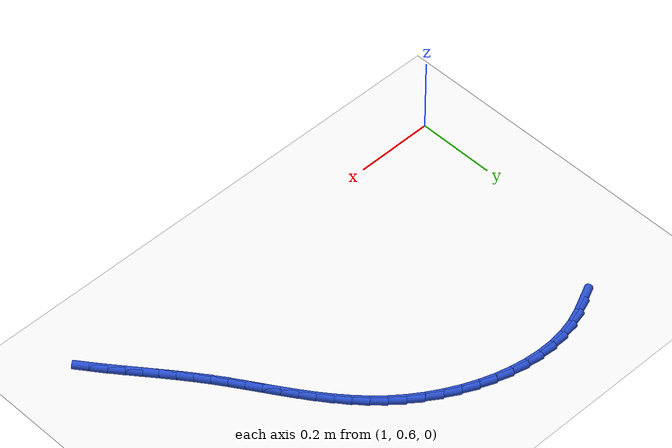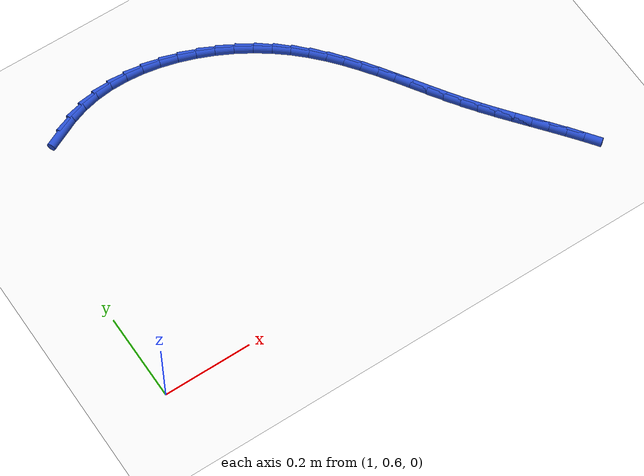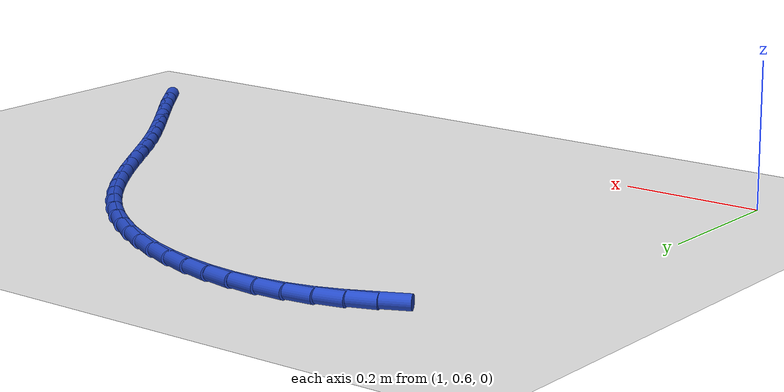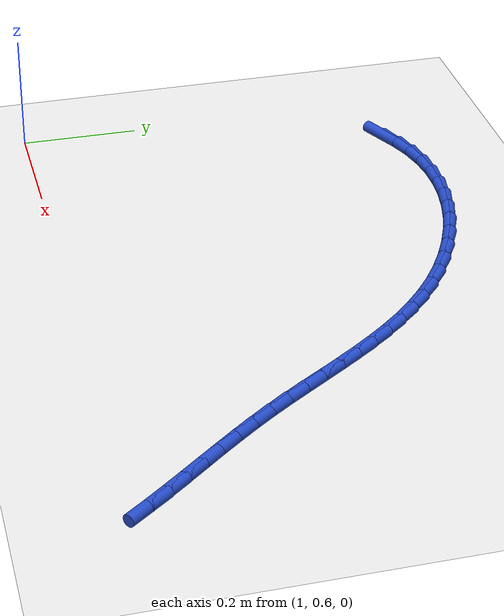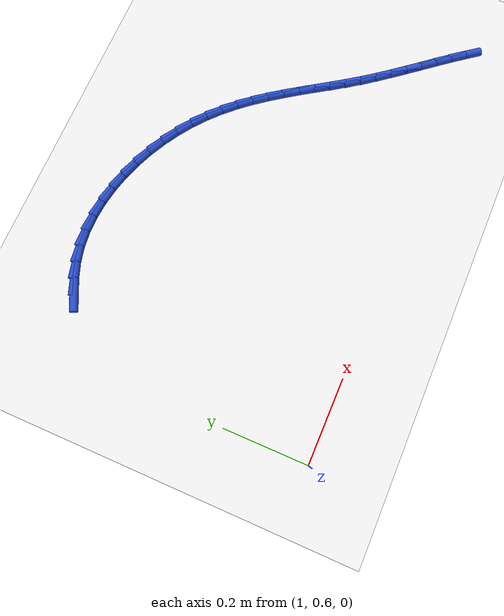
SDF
<sdf version="1.6">
 <world name="default">
  <model name="ground_plane">
   <static>1</static>
   <link name="link">
    <collision name="collision">
     <geometry><plane><normal>0 0 1</normal><size>100 100</size></plane></geometry>
     <surface><friction><ode><mu>100</mu><mu2>50</mu2></ode></friction></surface>
    </collision>
    <visual name="visual">
     <cast_shadows>0</cast_shadows>
     <geometry><plane><normal>0 0 1</normal><size>100 100</size></plane></geometry>
     <material>
      <script><uri>file://media/materials/scripts/gazebo.material</uri><name>Gazebo/WhiteGlow</name></script>
     </material>
    </visual>
   </link>
  </model>
  <model name="line">
   <link name="link_46">
    <pose>1.1372575468178663 1.2276370882994905 0.01 0 1.57 0.4421913343777353</pose>
    <collision name="collision">
     <geometry><cylinder><radius>0.01</radius><length>0.08</length></cylinder></geometry>
    </collision>
    <visual name="visual">
     <material>
      <script><name>Gazebo/Blue</name><uri>file://media/materials/scripts/gazebo.material</uri></script>
     </material>
     <geometry><cylinder><radius>0.01</radius><length>0.08</length></cylinder></geometry>
    </visual>
   </link>
   <link name="link_47">
    <pose>1.1714959165855325 1.243847597305266 0.01 0 1.57 0.3497722982154622</pose>
    <collision name="collision">
     <geometry><cylinder><radius>0.01</radius><length>0.08</length></cylinder></geometry>
    </collision>
    <visual name="visual">
     <material>
      <script><name>Gazebo/Blue</name><uri>file://media/materials/scripts/gazebo.material</uri></script>
     </material>
     <geometry><cylinder><radius>0.01</radius><length>0.08</length></cylinder></geometry>
    </visual>
   </link>
   <link name="link_48">
    <pose>1.2067796218252715 1.2567180511964138 0.01 0 1.57 0.23067535957727045</pose>
    <collision name="collision">
     <geometry><cylinder><radius>0.01</radius><length>0.08</length></cylinder></geometry>
    </collision>
    <visual name="visual">
     <material>
      <script><name>Gazebo/Blue</name><uri>file://media/materials/scripts/gazebo.material</uri></script>
     </material>
     <geometry><cylinder><radius>0.01</radius><length>0.08</length></cylinder></geometry>
    </visual>
   </link>
   <link name="link_49">
    <pose>1.2434469630554865 1.2653295911556897 0.01 0 1.57 0.11525048066100527</pose>
    <collision name="collision">
     <geometry><cylinder><radius>0.01</radius><length>0.08</length></cylinder></geometry>
    </collision>
    <visual name="visual">
     <material>
      <script><name>Gazebo/Blue</name><uri>file://media/materials/scripts/gazebo.material</uri></script>
     </material>
     <geometry><cylinder><radius>0.01</radius><length>0.08</length></cylinder></geometry>
    </visual>
   </link>
   <link name="link_50">
    <pose>1.2812796236305266 1.269709231776286 0.01 0 1.57 0.009816476666900477</pose>
    <collision name="collision">
     <geometry><cylinder><radius>0.01</radius><length>0.08</length></cylinder></geometry>
    </collision>
    <visual name="visual">
     <material>
      <script><name>Gazebo/Blue</name><uri>file://media/materials/scripts/gazebo.material</uri></script>
     </material>
     <geometry><cylinder><radius>0.01</radius><length>0.08</length></cylinder></geometry>
    </visual>
   </link>
   <link name="link_51">
    <pose>1.3199387960097917 1.2700887408302244 0.01 0 1.57 -0.08635241356312243</pose>
    <collision name="collision">
     <geometry><cylinder><radius>0.01</radius><length>0.08</length></cylinder></geometry>
    </collision>
    <visual name="visual">
     <material>
      <script><name>Gazebo/Blue</name><uri>file://media/materials/scripts/gazebo.material</uri></script>
     </material>
     <geometry><cylinder><radius>0.01</radius><length>0.08</length></cylinder></geometry>
    </visual>
   </link>
   <link name="link_52">
    <pose>1.3590856726526825 1.2666998860895282 0.01 0 1.57 -0.17444766923385047</pose>
    <collision name="collision">
     <geometry><cylinder><radius>0.01</radius><length>0.08</length></cylinder></geometry>
    </collision>
    <visual name="visual">
     <material>
      <script><name>Gazebo/Blue</name><uri>file://media/materials/scripts/gazebo.material</uri></script>
     </material>
     <geometry><cylinder><radius>0.01</radius><length>0.08</length></cylinder></geometry>
    </visual>
   </link>
   <link name="link_53">
    <pose>1.3983814460185984 1.259774435326218 0.01 0 1.57 -0.2558705989483674</pose>
    <collision name="collision">
     <geometry><cylinder><radius>0.01</radius><length>0.08</length></cylinder></geometry>
    </collision>
    <visual name="visual">
     <material>
      <script><name>Gazebo/Blue</name><uri>file://media/materials/scripts/gazebo.material</uri></script>
     </material>
     <geometry><cylinder><radius>0.01</radius><length>0.08</length></cylinder></geometry>
    </visual>
   </link>
   <link name="link_54">
    <pose>1.437487308566941 1.2495441563123164 0.01 0 1.57 -0.3320797615012355</pose>
    <collision name="collision">
     <geometry><cylinder><radius>0.01</radius><length>0.08</length></cylinder></geometry>
    </collision>
    <visual name="visual">
     <material>
      <script><name>Gazebo/Blue</name><uri>file://media/materials/scripts/gazebo.material</uri></script>
     </material>
     <geometry><cylinder><radius>0.01</radius><length>0.08</length></cylinder></geometry>
    </visual>
   </link>
   <link name="link_55">
    <pose>1.4760644527571107 1.236240816819846 0.01 0 1.57 -0.4045190941619599</pose>
    <collision name="collision">
     <geometry><cylinder><radius>0.01</radius><length>0.08</length></cylinder></geometry>
    </collision>
    <visual name="visual">
     <material>
      <script><name>Gazebo/Blue</name><uri>file://media/materials/scripts/gazebo.material</uri></script>
     </material>
     <geometry><cylinder><radius>0.01</radius><length>0.08</length></cylinder></geometry>
    </visual>
   </link>
   <link name="link_56">
    <pose>1.5137740710485073 1.2200961846208285 0.01 0 1.57 -0.47459988961286836</pose>
    <collision name="collision">
     <geometry><cylinder><radius>0.01</radius><length>0.08</length></cylinder></geometry>
    </collision>
    <visual name="visual">
     <material>
      <script><name>Gazebo/Blue</name><uri>file://media/materials/scripts/gazebo.material</uri></script>
     </material>
     <geometry><cylinder><radius>0.01</radius><length>0.08</length></cylinder></geometry>
    </visual>
   </link>
   <link name="link_57">
    <pose>1.5502773559005314 1.2013420274872861 0.01 0 1.57 -0.5437158128022382</pose>
    <collision name="collision">
     <geometry><cylinder><radius>0.01</radius><length>0.08</length></cylinder></geometry>
    </collision>
    <visual name="visual">
     <material>
      <script><name>Gazebo/Blue</name><uri>file://media/materials/scripts/gazebo.material</uri></script>
     </material>
     <geometry><cylinder><radius>0.01</radius><length>0.08</length></cylinder></geometry>
    </visual>
   </link>
   <link name="link_58">
    <pose>1.5852354997725835 1.1802101131912401 0.01 0 1.57 -0.6132775121483026</pose>
    <collision name="collision">
     <geometry><cylinder><radius>0.01</radius><length>0.08</length></cylinder></geometry>
    </collision>
    <visual name="visual">
     <material>
      <script><name>Gazebo/Blue</name><uri>file://media/materials/scripts/gazebo.material</uri></script>
     </material>
     <geometry><cylinder><radius>0.01</radius><length>0.08</length></cylinder></geometry>
    </visual>
   </link>
   <link name="link_59">
    <pose>1.6183096951240639 1.1569322095047145 0.01 0 1.57 -0.6847044109048276</pose>
    <collision name="collision">
     <geometry><cylinder><radius>0.01</radius><length>0.08</length></cylinder></geometry>
    </collision>
    <visual name="visual">
     <material>
      <script><name>Gazebo/Blue</name><uri>file://media/materials/scripts/gazebo.material</uri></script>
     </material>
     <geometry><cylinder><radius>0.01</radius><length>0.08</length></cylinder></geometry>
    </visual>
   </link>
   <link name="link_60">
    <pose>1.6491645330427906 1.1317401005094236 0.01 0 1.57 -0.7554290626280827</pose>
    <collision name="collision">
     <geometry><cylinder><radius>0.01</radius><length>0.08</length></cylinder></geometry>
    </collision>
    <visual name="visual">
     <material>
      <script><name>Gazebo/Blue</name><uri>file://media/materials/scripts/gazebo.material</uri></script>
     </material>
     <geometry><cylinder><radius>0.01</radius><length>0.08</length></cylinder></geometry>
    </visual>
   </link>
   <link name="link_61">
    <pose>1.6776989588125966 1.1048666949305959 0.01 0 1.57 -0.8186812039620099</pose>
    <collision name="collision">
     <geometry><cylinder><radius>0.01</radius><length>0.08</length></cylinder></geometry>
    </collision>
    <visual name="visual">
     <material>
      <script><name>Gazebo/Blue</name><uri>file://media/materials/scripts/gazebo.material</uri></script>
     </material>
     <geometry><cylinder><radius>0.01</radius><length>0.08</length></cylinder></geometry>
    </visual>
   </link>
   <link name="link_62">
    <pose>1.7041938408388853 1.0765467343062143 0.01 0 1.57 -0.8728358423089139</pose>
    <collision name="collision">
     <geometry><cylinder><radius>0.01</radius><length>0.08</length></cylinder></geometry>
    </collision>
    <visual name="visual">
     <material>
      <script><name>Gazebo/Blue</name><uri>file://media/materials/scripts/gazebo.material</uri></script>
     </material>
     <geometry><cylinder><radius>0.01</radius><length>0.08</length></cylinder></geometry>
    </visual>
   </link>
   <link name="link_63">
    <pose>1.7289651850000305 1.047015128795655 0.01 0 1.57 -0.9172488155020763</pose>
    <collision name="collision">
     <geometry><cylinder><radius>0.01</radius><length>0.08</length></cylinder></geometry>
    </collision>
    <visual name="visual">
     <material>
      <script><name>Gazebo/Blue</name><uri>file://media/materials/scripts/gazebo.material</uri></script>
     </material>
     <geometry><cylinder><radius>0.01</radius><length>0.08</length></cylinder></geometry>
    </visual>
   </link>
   <link name="link_64">
    <pose>1.7523289971744072 1.0165067885582937 0.01 0 1.57 -0.9515913978916665</pose>
    <collision name="collision">
     <geometry><cylinder><radius>0.01</radius><length>0.08</length></cylinder></geometry>
    </collision>
    <visual name="visual">
     <material>
      <script><name>Gazebo/Blue</name><uri>file://media/materials/scripts/gazebo.material</uri></script>
     </material>
     <geometry><cylinder><radius>0.01</radius><length>0.08</length></cylinder></geometry>
    </visual>
   </link>
   <link name="link_65">
    <pose>1.7746012832403901 0.985256623753507 0.01 0 1.57 -0.975733914231562</pose>
    <collision name="collision">
     <geometry><cylinder><radius>0.01</radius><length>0.08</length></cylinder></geometry>
    </collision>
    <visual name="visual">
     <material>
      <script><name>Gazebo/Blue</name><uri>file://media/materials/scripts/gazebo.material</uri></script>
     </material>
     <geometry><cylinder><radius>0.01</radius><length>0.08</length></cylinder></geometry>
    </visual>
   </link>
   <link name="link_66">
    <pose>1.7960980490763516 0.953499544540671 0.01 0 1.57 -0.9896436483872656</pose>
    <collision name="collision">
     <geometry><cylinder><radius>0.01</radius><length>0.08</length></cylinder></geometry>
    </collision>
    <visual name="visual">
     <material>
      <script><name>Gazebo/Blue</name><uri>file://media/materials/scripts/gazebo.material</uri></script>
     </material>
     <geometry><cylinder><radius>0.01</radius><length>0.08</length></cylinder></geometry>
    </visual>
   </link>
   <link name="link_67">
    <pose>1.8171353005606667 0.9214704610791613 0.01 0 1.57 -0.9933098073378793</pose>
    <collision name="collision">
     <geometry><cylinder><radius>0.01</radius><length>0.08</length></cylinder></geometry>
    </collision>
    <visual name="visual">
     <material>
      <script><name>Gazebo/Blue</name><uri>file://media/materials/scripts/gazebo.material</uri></script>
     </material>
     <geometry><cylinder><radius>0.01</radius><length>0.08</length></cylinder></geometry>
    </visual>
   </link>
   <link name="link_68">
    <pose>1.83802904357171 0.8894042835283544 0.01 0 1.57 -0.9866996945480181</pose>
    <collision name="collision">
     <geometry><cylinder><radius>0.01</radius><length>0.08</length></cylinder></geometry>
    </collision>
    <visual name="visual">
     <material>
      <script><name>Gazebo/Blue</name><uri>file://media/materials/scripts/gazebo.material</uri></script>
     </material>
     <geometry><cylinder><radius>0.01</radius><length>0.08</length></cylinder></geometry>
    </visual>
   </link>
   <link name="link_69">
    <pose>1.8590952839878554 0.8575359220476265 0.01 0 1.57 -0.969746816540052</pose>
    <collision name="collision">
     <geometry><cylinder><radius>0.01</radius><length>0.08</length></cylinder></geometry>
    </collision>
    <visual name="visual">
     <material>
      <script><name>Gazebo/Blue</name><uri>file://media/materials/scripts/gazebo.material</uri></script>
     </material>
     <geometry><cylinder><radius>0.01</radius><length>0.08</length></cylinder></geometry>
    </visual>
   </link>
   <link name="link_70">
    <pose>1.8806500276874765 0.8261002867963538 0.01 0 1.57 -0.9442683324021134</pose>
    <collision name="collision">
     <geometry><cylinder><radius>0.01</radius><length>0.08</length></cylinder></geometry>
    </collision>
    <visual name="visual">
     <material>
      <script><name>Gazebo/Blue</name><uri>file://media/materials/scripts/gazebo.material</uri></script>
     </material>
     <geometry><cylinder><radius>0.01</radius><length>0.08</length></cylinder></geometry>
    </visual>
   </link>
   <link name="link_71">
    <pose>1.9029536798570315 0.795286067098332 0.01 0 1.57 -0.9215701571300232</pose>
    <collision name="collision">
     <geometry><cylinder><radius>0.01</radius><length>0.08</length></cylinder></geometry>
    </collision>
    <visual name="visual">
     <material>
      <script><name>Gazebo/Blue</name><uri>file://media/materials/scripts/gazebo.material</uri></script>
     </material>
     <geometry><cylinder><radius>0.01</radius><length>0.08</length></cylinder></geometry>
    </visual>
   </link>
   <link name="link_72">
    <pose>1.9259353525421583 0.7650065484062413 0.01 0 1.57 -0.9059077089990951</pose>
    <collision name="collision">
     <geometry><cylinder><radius>0.01</radius><length>0.08</length></cylinder></geometry>
    </collision>
    <visual name="visual">
     <material>
      <script><name>Gazebo/Blue</name><uri>file://media/materials/scripts/gazebo.material</uri></script>
     </material>
     <geometry><cylinder><radius>0.01</radius><length>0.08</length></cylinder></geometry>
    </visual>
   </link>
   <link name="link_73">
    <pose>1.9494019587494928 0.7350734321547396 0.01 0 1.57 -0.8973238643277884</pose>
    <collision name="collision">
     <geometry><cylinder><radius>0.01</radius><length>0.08</length></cylinder></geometry>
    </collision>
    <visual name="visual">
     <material>
      <script><name>Gazebo/Blue</name><uri>file://media/materials/scripts/gazebo.material</uri></script>
     </material>
     <geometry><cylinder><radius>0.01</radius><length>0.08</length></cylinder></geometry>
    </visual>
   </link>
   <link name="link_74">
    <pose>1.9731602183554142 0.7052982592293683 0.01 0 1.57 -0.8958082652464978</pose>
    <collision name="collision">
     <geometry><cylinder><radius>0.01</radius><length>0.08</length></cylinder></geometry>
    </collision>
    <visual name="visual">
     <material>
      <script><name>Gazebo/Blue</name><uri>file://media/materials/scripts/gazebo.material</uri></script>
     </material>
     <geometry><cylinder><radius>0.01</radius><length>0.08</length></cylinder></geometry>
    </visual>
   </link>
   <link name="link_75">
    <pose>1.9970168512362996 0.675492570515669 0.01 0 1.57 -0.9013170855567493</pose>
    <collision name="collision">
     <geometry><cylinder><radius>0.01</radius><length>0.08</length></cylinder></geometry>
    </collision>
    <visual name="visual">
     <material>
      <script><name>Gazebo/Blue</name><uri>file://media/materials/scripts/gazebo.material</uri></script>
     </material>
     <geometry><cylinder><radius>0.01</radius><length>0.08</length></cylinder></geometry>
    </visual>
   </link>
   <link name="link_76">
    <pose>2.020778577268526 0.6454679068991833 0.01 0 1.57 -0.913775996135123</pose>
    <collision name="collision">
     <geometry><cylinder><radius>0.01</radius><length>0.08</length></cylinder></geometry>
    </collision>
    <visual name="visual">
     <material>
      <script><name>Gazebo/Blue</name><uri>file://media/materials/scripts/gazebo.material</uri></script>
     </material>
     <geometry><cylinder><radius>0.01</radius><length>0.08</length></cylinder></geometry>
    </visual>
   </link>
   <link name="link_77">
    <pose>2.0442521163284715 0.6150358092654524 0.01 0 1.57 -0.933073262158163</pose>
    <collision name="collision">
     <geometry><cylinder><radius>0.01</radius><length>0.08</length></cylinder></geometry>
    </collision>
    <visual name="visual">
     <material>
      <script><name>Gazebo/Blue</name><uri>file://media/materials/scripts/gazebo.material</uri></script>
     </material>
     <geometry><cylinder><radius>0.01</radius><length>0.08</length></cylinder></geometry>
    </visual>
   </link>
  </model>
 </world>
</sdf>
